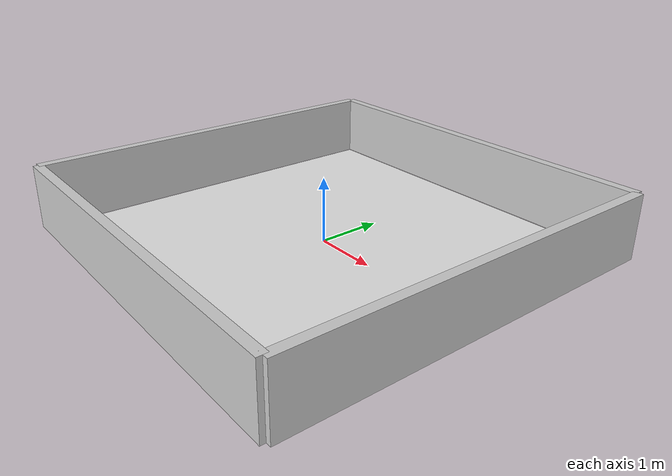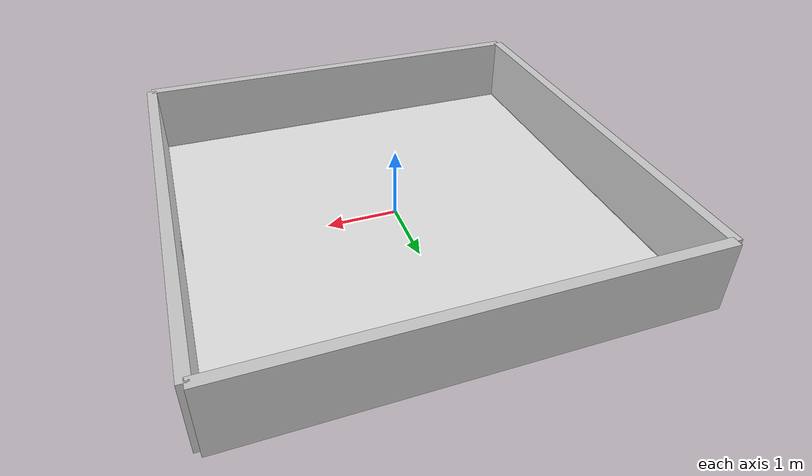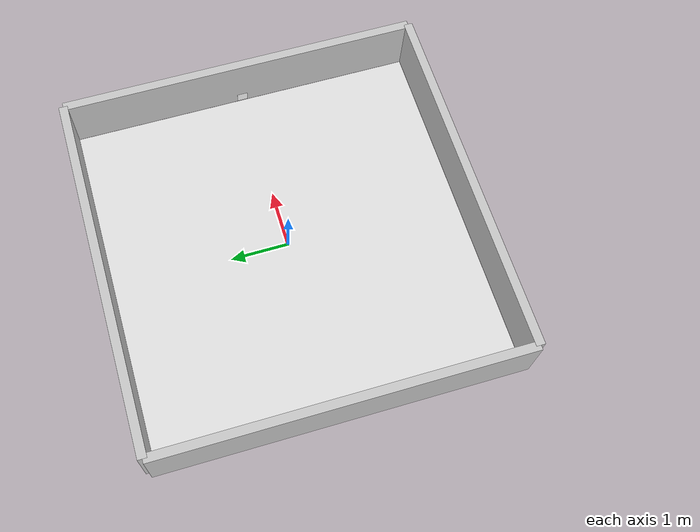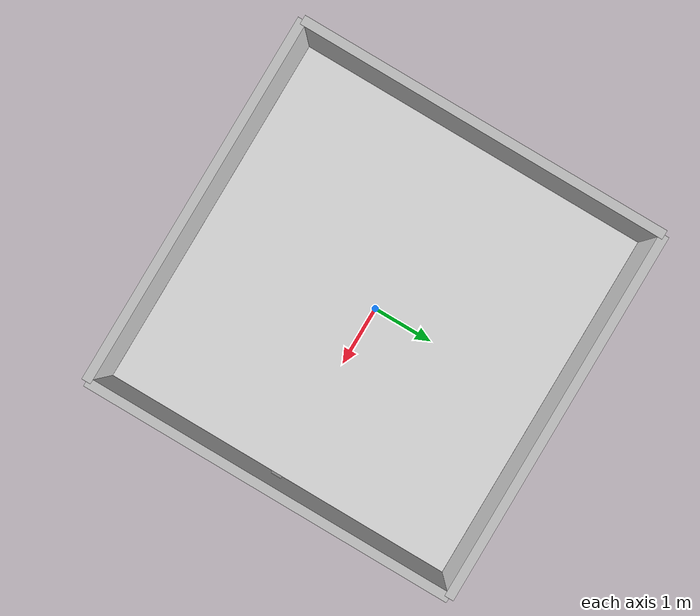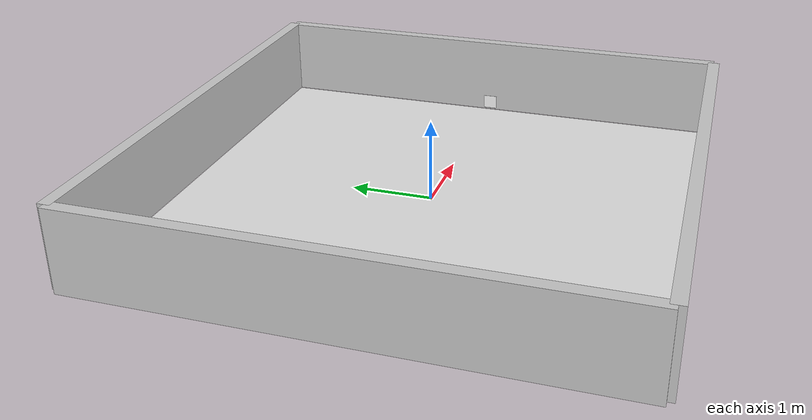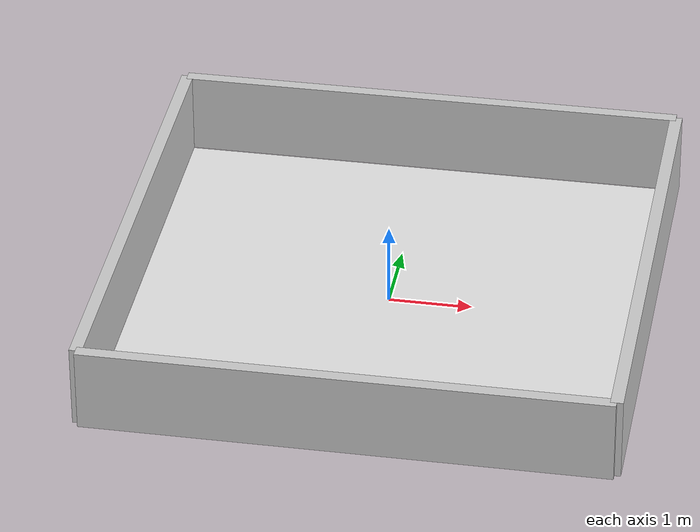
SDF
<?xml version="1.0" ?>
<sdf version="1.7">
  <world name="square_room">

    <!-- Plugins -->
    <plugin filename="gz-sim-physics-system"
            name="gz::sim::systems::Physics"/>
    <plugin filename="gz-sim-user-commands-system"
            name="gz::sim::systems::UserCommands"/>
    <plugin filename="gz-sim-scene-broadcaster-system"
            name="gz::sim::systems::SceneBroadcaster"/>
    <plugin filename="gz-sim-sensors-system"
            name="gz::sim::systems::Sensors">
      <render_engine>ogre2</render_engine>
    </plugin>

    <!-- Sun -->
    <include>
      <uri>https://fuel.gazebosim.org/1.0/OpenRobotics/models/Sun</uri>
    </include>

    <!-- Floor: 6m x 6m white -->
    <model name="floor">
      <static>true</static>
      <link name="link">
        <collision name="collision">
          <geometry><plane><normal>0 0 1</normal><size>6 6</size></plane></geometry>
        </collision>
        <visual name="visual">
          <geometry><plane><normal>0 0 1</normal><size>6 6</size></plane></geometry>
          <material>
            <ambient>0.9 0.9 0.9 1</ambient>
            <diffuse>0.9 0.9 0.9 1</diffuse>
          </material>
        </visual>
      </link>
    </model>

    <!-- Wall thickness: 0.15m, height: 1.0m -->
    <!-- Room interior: 6m x 6m, walls at +/-3m -->

    <model name="wall_north">
      <static>true</static>
      <pose>0 3.075 0.5 0 0 0</pose>
      <link name="link">
        <collision name="collision">
          <geometry><box><size>6.15 0.15 1.0</size></box></geometry>
        </collision>
        <visual name="visual">
          <geometry><box><size>6.15 0.15 1.0</size></box></geometry>
          <material>
            <ambient>0.8 0.8 0.8 1</ambient>
            <diffuse>0.8 0.8 0.8 1</diffuse>
          </material>
        </visual>
      </link>
    </model>

    <model name="wall_south">
      <static>true</static>
      <pose>0 -3.075 0.5 0 0 0</pose>
      <link name="link">
        <collision name="collision">
          <geometry><box><size>6.15 0.15 1.0</size></box></geometry>
        </collision>
        <visual name="visual">
          <geometry><box><size>6.15 0.15 1.0</size></box></geometry>
          <material>
            <ambient>0.8 0.8 0.8 1</ambient>
            <diffuse>0.8 0.8 0.8 1</diffuse>
          </material>
        </visual>
      </link>
    </model>

    <model name="wall_east">
      <static>true</static>
      <pose>3.075 0 0.5 0 0 0</pose>
      <link name="link">
        <collision name="collision">
          <geometry><box><size>0.15 6.15 1.0</size></box></geometry>
        </collision>
        <visual name="visual">
          <geometry><box><size>0.15 6.15 1.0</size></box></geometry>
          <material>
            <ambient>0.8 0.8 0.8 1</ambient>
            <diffuse>0.8 0.8 0.8 1</diffuse>
          </material>
        </visual>
      </link>
    </model>

    <model name="wall_west">
      <static>true</static>
      <pose>-3.075 0 0.5 0 0 0</pose>
      <link name="link">
        <collision name="collision">
          <geometry><box><size>0.15 6.15 1.0</size></box></geometry>
        </collision>
        <visual name="visual">
          <geometry><box><size>0.15 6.15 1.0</size></box></geometry>
          <material>
            <ambient>0.8 0.8 0.8 1</ambient>
            <diffuse>0.8 0.8 0.8 1</diffuse>
          </material>
        </visual>
      </link>
    </model>

    <!-- ArUco marker #42 on the east wall, centred at camera height -->
    <!-- Flush against inner face of east wall (x = 3.0 - half thickness) -->
    <!-- Marker normal points in -X (toward room centre) -->
    <include>
      <uri>model://aruco_marker_42</uri>
      <pose>2.997 0 0.107 0 0 0</pose>
      <static>true</static>
    </include>

  </world>
</sdf>

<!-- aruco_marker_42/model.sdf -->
<sdf version="1.7">
  <model name="aruco_marker_42">
    <static>true</static>
    <link name="link">
      <visual name="marker_visual">
        <geometry>
          <box><size>0.005 0.18 0.18</size></box>
        </geometry>
        <material>
          <diffuse>1 1 1 1</diffuse>
          <pbr>
            <metal>
              <albedo_map>materials/textures/aruco_42.png</albedo_map>
            </metal>
          </pbr>
        </material>
      </visual>
      <collision name="marker_collision">
        <geometry>
          <box><size>0.005 0.18 0.18</size></box>
        </geometry>
      </collision>
    </link>
  </model>
</sdf>
